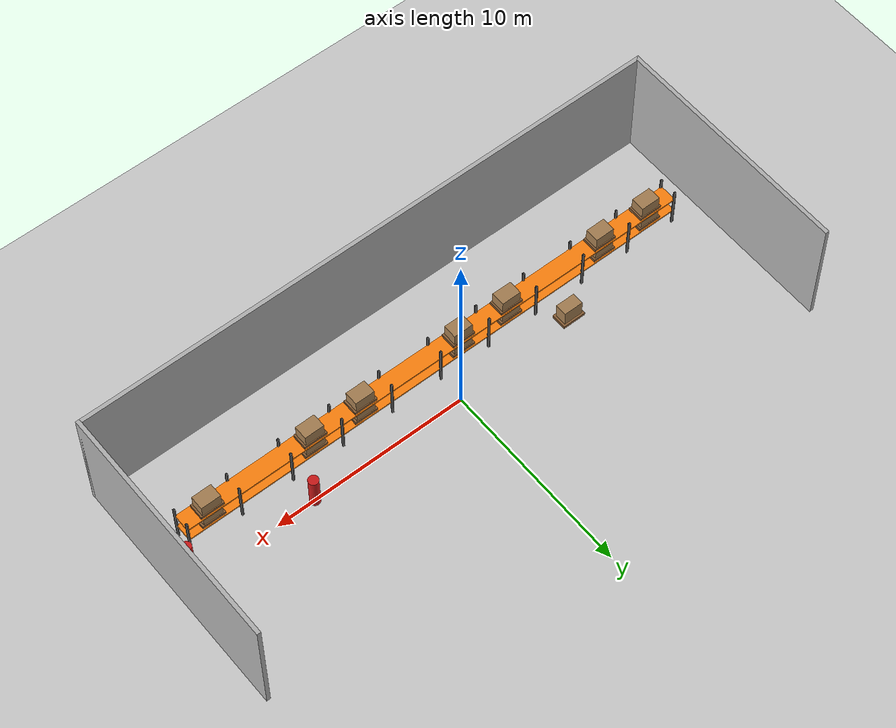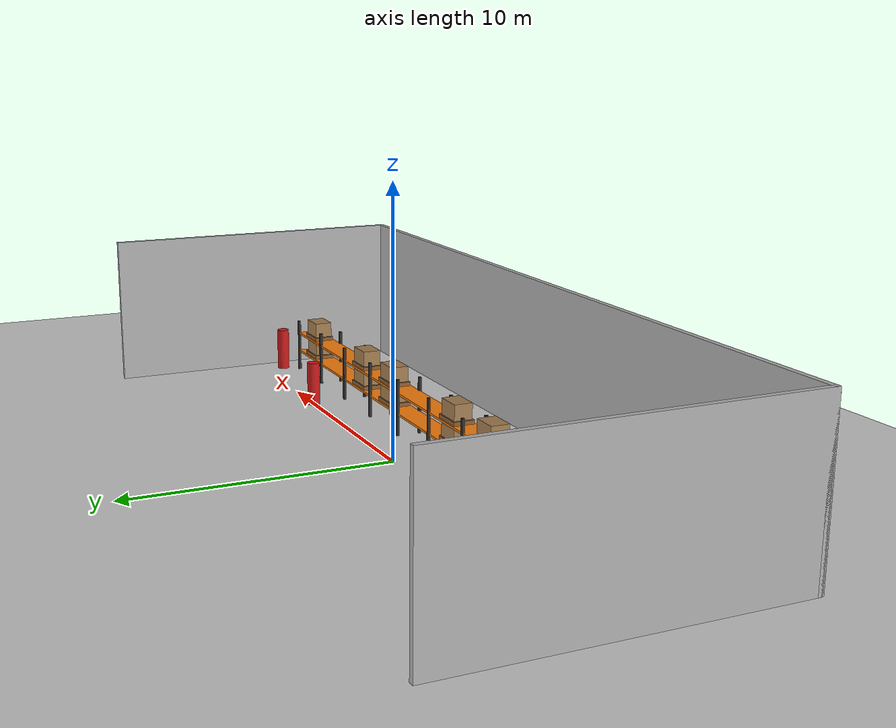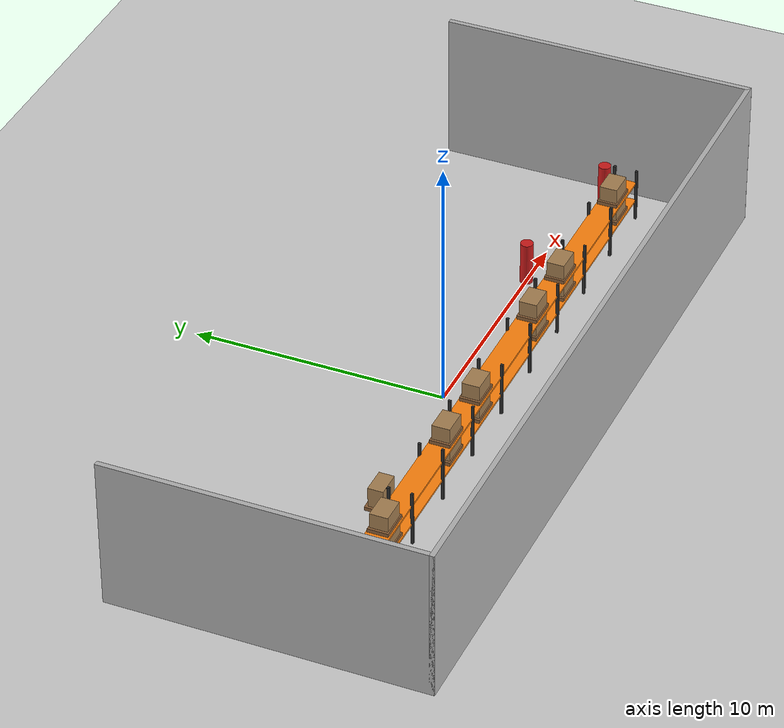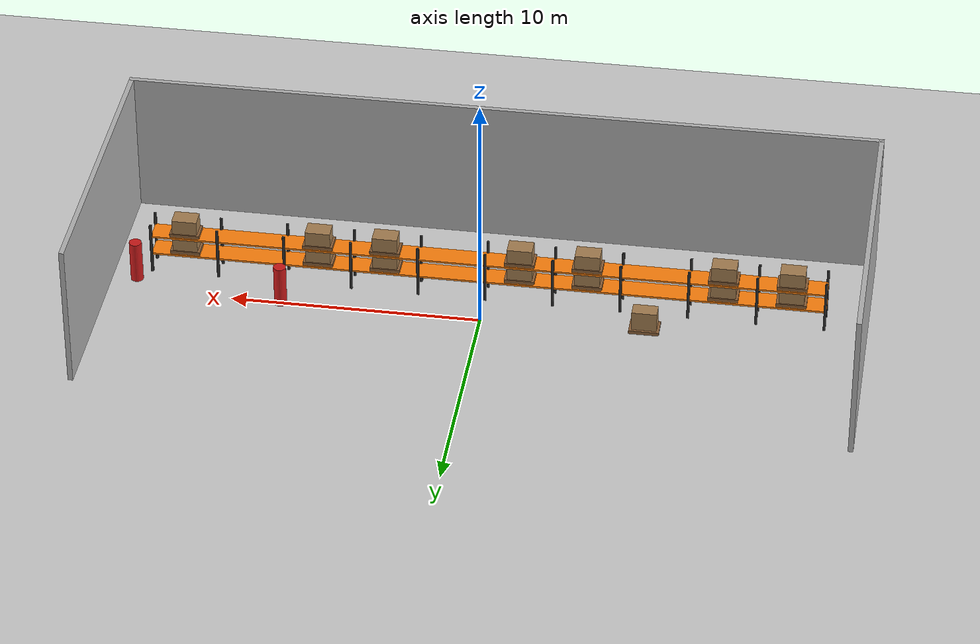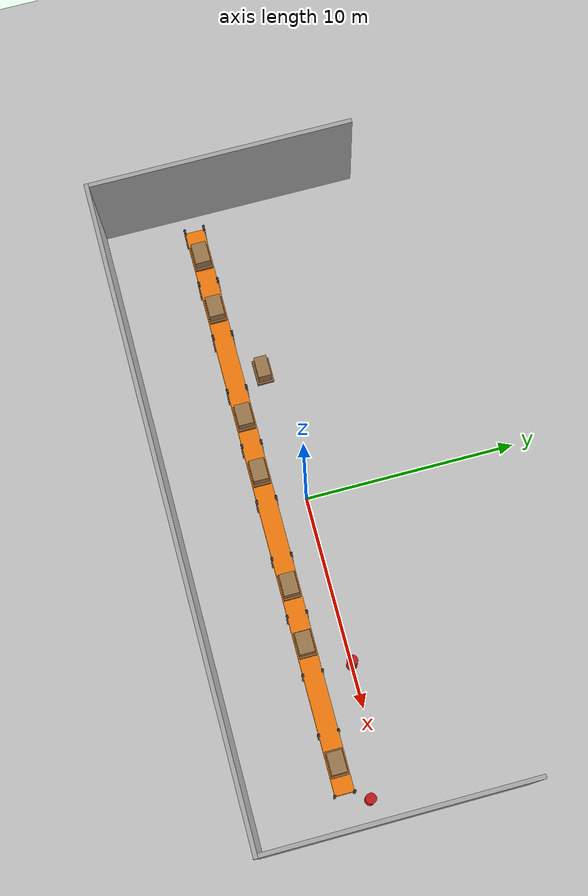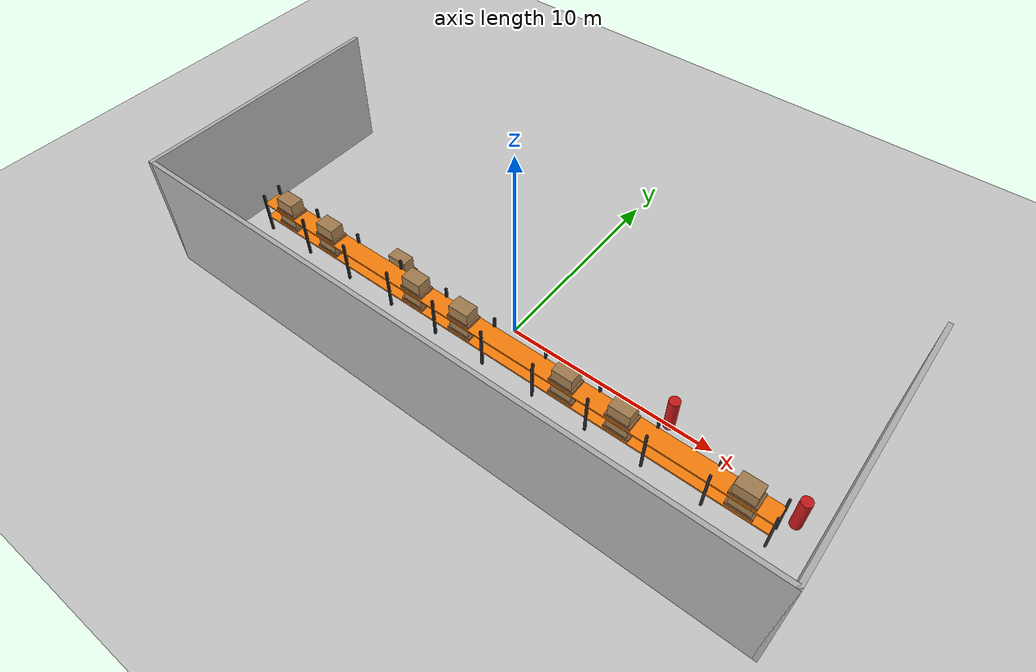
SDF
<sdf version="1.9">
 <world name="warehouse">
  <model name="ground_plane">
   <static>true</static>
   <link name="link">
    <collision name="collision">
     <geometry><plane><normal>0 0 1</normal><size>100 100</size></plane></geometry>
     <surface><friction><ode><mu>100</mu><mu2>50</mu2></ode></friction></surface>
    </collision>
    <visual name="visual">
     <geometry><plane><normal>0 0 1</normal><size>100 100</size></plane></geometry>
     <material><ambient>0.8 0.8 0.8 1</ambient><diffuse>0.8 0.8 0.8 1</diffuse></material>
    </visual>
   </link>
  </model>
  <model name="wall_west">
   <static>true</static>
   <pose>-15.1000 0.0000 3.0000 0 0 0</pose>
   <link name="link">
    <collision name="collision"><geometry><box><size>0.2000 12.4000 6.0000</size></box></geometry></collision>
    <visual name="visual">
     <geometry><box><size>0.2000 12.4000 6.0000</size></box></geometry>
     <material>
      <ambient>0.70 0.70 0.70 1</ambient>
      <diffuse>0.70 0.70 0.70 1</diffuse>
      <specular>0.1 0.1 0.1 1</specular>
     </material>
    </visual>
   </link>
  </model>
  <model name="wall_east">
   <static>true</static>
   <pose>15.1000 0.0000 3.0000 0 0 0</pose>
   <link name="link">
    <collision name="collision"><geometry><box><size>0.2000 12.4000 6.0000</size></box></geometry></collision>
    <visual name="visual">
     <geometry><box><size>0.2000 12.4000 6.0000</size></box></geometry>
     <material>
      <ambient>0.70 0.70 0.70 1</ambient>
      <diffuse>0.70 0.70 0.70 1</diffuse>
      <specular>0.1 0.1 0.1 1</specular>
     </material>
    </visual>
   </link>
  </model>
  <model name="wall_south">
   <static>true</static>
   <pose>0.0000 -6.1000 3.0000 0 0 0</pose>
   <link name="link">
    <collision name="collision"><geometry><box><size>30.4000 0.2000 6.0000</size></box></geometry></collision>
    <visual name="visual">
     <geometry><box><size>30.4000 0.2000 6.0000</size></box></geometry>
     <material>
      <ambient>0.70 0.70 0.70 1</ambient>
      <diffuse>0.70 0.70 0.70 1</diffuse>
      <specular>0.1 0.1 0.1 1</specular>
     </material>
    </visual>
   </link>
  </model>
  <model name="upright_s_0_0">
   <static>true</static>
   <pose>-13.5000 -1.4000 1.1000 0 0 0</pose>
   <link name="link">
    <collision name="collision"><geometry><box><size>0.1000 0.1000 2.2000</size></box></geometry></collision>
    <visual name="visual">
     <geometry><box><size>0.1000 0.1000 2.2000</size></box></geometry>
     <material>
      <ambient>0.18 0.18 0.18 1</ambient>
      <diffuse>0.18 0.18 0.18 1</diffuse>
      <specular>0.1 0.1 0.1 1</specular>
     </material>
    </visual>
   </link>
  </model>
  <model name="upright_s_0_1">
   <static>true</static>
   <pose>-13.5000 -2.3000 1.1000 0 0 0</pose>
   <link name="link">
    <collision name="collision"><geometry><box><size>0.1000 0.1000 2.2000</size></box></geometry></collision>
    <visual name="visual">
     <geometry><box><size>0.1000 0.1000 2.2000</size></box></geometry>
     <material>
      <ambient>0.18 0.18 0.18 1</ambient>
      <diffuse>0.18 0.18 0.18 1</diffuse>
      <specular>0.1 0.1 0.1 1</specular>
     </material>
    </visual>
   </link>
  </model>
  <model name="upright_s_1_0">
   <static>true</static>
   <pose>-10.8000 -1.4000 1.1000 0 0 0</pose>
   <link name="link">
    <collision name="collision"><geometry><box><size>0.1000 0.1000 2.2000</size></box></geometry></collision>
    <visual name="visual">
     <geometry><box><size>0.1000 0.1000 2.2000</size></box></geometry>
     <material>
      <ambient>0.18 0.18 0.18 1</ambient>
      <diffuse>0.18 0.18 0.18 1</diffuse>
      <specular>0.1 0.1 0.1 1</specular>
     </material>
    </visual>
   </link>
  </model>
  <model name="upright_s_1_1">
   <static>true</static>
   <pose>-10.8000 -2.3000 1.1000 0 0 0</pose>
   <link name="link">
    <collision name="collision"><geometry><box><size>0.1000 0.1000 2.2000</size></box></geometry></collision>
    <visual name="visual">
     <geometry><box><size>0.1000 0.1000 2.2000</size></box></geometry>
     <material>
      <ambient>0.18 0.18 0.18 1</ambient>
      <diffuse>0.18 0.18 0.18 1</diffuse>
      <specular>0.1 0.1 0.1 1</specular>
     </material>
    </visual>
   </link>
  </model>
  <model name="upright_s_2_0">
   <static>true</static>
   <pose>-8.1000 -1.4000 1.1000 0 0 0</pose>
   <link name="link">
    <collision name="collision"><geometry><box><size>0.1000 0.1000 2.2000</size></box></geometry></collision>
    <visual name="visual">
     <geometry><box><size>0.1000 0.1000 2.2000</size></box></geometry>
     <material>
      <ambient>0.18 0.18 0.18 1</ambient>
      <diffuse>0.18 0.18 0.18 1</diffuse>
      <specular>0.1 0.1 0.1 1</specular>
     </material>
    </visual>
   </link>
  </model>
  <model name="upright_s_2_1">
   <static>true</static>
   <pose>-8.1000 -2.3000 1.1000 0 0 0</pose>
   <link name="link">
    <collision name="collision"><geometry><box><size>0.1000 0.1000 2.2000</size></box></geometry></collision>
    <visual name="visual">
     <geometry><box><size>0.1000 0.1000 2.2000</size></box></geometry>
     <material>
      <ambient>0.18 0.18 0.18 1</ambient>
      <diffuse>0.18 0.18 0.18 1</diffuse>
      <specular>0.1 0.1 0.1 1</specular>
     </material>
    </visual>
   </link>
  </model>
  <model name="upright_s_3_0">
   <static>true</static>
   <pose>-5.4000 -1.4000 1.1000 0 0 0</pose>
   <link name="link">
    <collision name="collision"><geometry><box><size>0.1000 0.1000 2.2000</size></box></geometry></collision>
    <visual name="visual">
     <geometry><box><size>0.1000 0.1000 2.2000</size></box></geometry>
     <material>
      <ambient>0.18 0.18 0.18 1</ambient>
      <diffuse>0.18 0.18 0.18 1</diffuse>
      <specular>0.1 0.1 0.1 1</specular>
     </material>
    </visual>
   </link>
  </model>
  <model name="upright_s_3_1">
   <static>true</static>
   <pose>-5.4000 -2.3000 1.1000 0 0 0</pose>
   <link name="link">
    <collision name="collision"><geometry><box><size>0.1000 0.1000 2.2000</size></box></geometry></collision>
    <visual name="visual">
     <geometry><box><size>0.1000 0.1000 2.2000</size></box></geometry>
     <material>
      <ambient>0.18 0.18 0.18 1</ambient>
      <diffuse>0.18 0.18 0.18 1</diffuse>
      <specular>0.1 0.1 0.1 1</specular>
     </material>
    </visual>
   </link>
  </model>
  <model name="upright_s_4_0">
   <static>true</static>
   <pose>-2.7000 -1.4000 1.1000 0 0 0</pose>
   <link name="link">
    <collision name="collision"><geometry><box><size>0.1000 0.1000 2.2000</size></box></geometry></collision>
    <visual name="visual">
     <geometry><box><size>0.1000 0.1000 2.2000</size></box></geometry>
     <material>
      <ambient>0.18 0.18 0.18 1</ambient>
      <diffuse>0.18 0.18 0.18 1</diffuse>
      <specular>0.1 0.1 0.1 1</specular>
     </material>
    </visual>
   </link>
  </model>
  <model name="upright_s_4_1">
   <static>true</static>
   <pose>-2.7000 -2.3000 1.1000 0 0 0</pose>
   <link name="link">
    <collision name="collision"><geometry><box><size>0.1000 0.1000 2.2000</size></box></geometry></collision>
    <visual name="visual">
     <geometry><box><size>0.1000 0.1000 2.2000</size></box></geometry>
     <material>
      <ambient>0.18 0.18 0.18 1</ambient>
      <diffuse>0.18 0.18 0.18 1</diffuse>
      <specular>0.1 0.1 0.1 1</specular>
     </material>
    </visual>
   </link>
  </model>
  <model name="upright_s_5_0">
   <static>true</static>
   <pose>0.0000 -1.4000 1.1000 0 0 0</pose>
   <link name="link">
    <collision name="collision"><geometry><box><size>0.1000 0.1000 2.2000</size></box></geometry></collision>
    <visual name="visual">
     <geometry><box><size>0.1000 0.1000 2.2000</size></box></geometry>
     <material>
      <ambient>0.18 0.18 0.18 1</ambient>
      <diffuse>0.18 0.18 0.18 1</diffuse>
      <specular>0.1 0.1 0.1 1</specular>
     </material>
    </visual>
   </link>
  </model>
  <model name="upright_s_5_1">
   <static>true</static>
   <pose>0.0000 -2.3000 1.1000 0 0 0</pose>
   <link name="link">
    <collision name="collision"><geometry><box><size>0.1000 0.1000 2.2000</size></box></geometry></collision>
    <visual name="visual">
     <geometry><box><size>0.1000 0.1000 2.2000</size></box></geometry>
     <material>
      <ambient>0.18 0.18 0.18 1</ambient>
      <diffuse>0.18 0.18 0.18 1</diffuse>
      <specular>0.1 0.1 0.1 1</specular>
     </material>
    </visual>
   </link>
  </model>
  <model name="upright_s_6_0">
   <static>true</static>
   <pose>2.7000 -1.4000 1.1000 0 0 0</pose>
   <link name="link">
    <collision name="collision"><geometry><box><size>0.1000 0.1000 2.2000</size></box></geometry></collision>
    <visual name="visual">
     <geometry><box><size>0.1000 0.1000 2.2000</size></box></geometry>
     <material>
      <ambient>0.18 0.18 0.18 1</ambient>
      <diffuse>0.18 0.18 0.18 1</diffuse>
      <specular>0.1 0.1 0.1 1</specular>
     </material>
    </visual>
   </link>
  </model>
  <model name="upright_s_6_1">
   <static>true</static>
   <pose>2.7000 -2.3000 1.1000 0 0 0</pose>
   <link name="link">
    <collision name="collision"><geometry><box><size>0.1000 0.1000 2.2000</size></box></geometry></collision>
    <visual name="visual">
     <geometry><box><size>0.1000 0.1000 2.2000</size></box></geometry>
     <material>
      <ambient>0.18 0.18 0.18 1</ambient>
      <diffuse>0.18 0.18 0.18 1</diffuse>
      <specular>0.1 0.1 0.1 1</specular>
     </material>
    </visual>
   </link>
  </model>
  <model name="upright_s_7_0">
   <static>true</static>
   <pose>5.4000 -1.4000 1.1000 0 0 0</pose>
   <link name="link">
    <collision name="collision"><geometry><box><size>0.1000 0.1000 2.2000</size></box></geometry></collision>
    <visual name="visual">
     <geometry><box><size>0.1000 0.1000 2.2000</size></box></geometry>
     <material>
      <ambient>0.18 0.18 0.18 1</ambient>
      <diffuse>0.18 0.18 0.18 1</diffuse>
      <specular>0.1 0.1 0.1 1</specular>
     </material>
    </visual>
   </link>
  </model>
  <model name="upright_s_7_1">
   <static>true</static>
   <pose>5.4000 -2.3000 1.1000 0 0 0</pose>
   <link name="link">
    <collision name="collision"><geometry><box><size>0.1000 0.1000 2.2000</size></box></geometry></collision>
    <visual name="visual">
     <geometry><box><size>0.1000 0.1000 2.2000</size></box></geometry>
     <material>
      <ambient>0.18 0.18 0.18 1</ambient>
      <diffuse>0.18 0.18 0.18 1</diffuse>
      <specular>0.1 0.1 0.1 1</specular>
     </material>
    </visual>
   </link>
  </model>
  <model name="upright_s_8_0">
   <static>true</static>
   <pose>8.1000 -1.4000 1.1000 0 0 0</pose>
   <link name="link">
    <collision name="collision"><geometry><box><size>0.1000 0.1000 2.2000</size></box></geometry></collision>
    <visual name="visual">
     <geometry><box><size>0.1000 0.1000 2.2000</size></box></geometry>
     <material>
      <ambient>0.18 0.18 0.18 1</ambient>
      <diffuse>0.18 0.18 0.18 1</diffuse>
      <specular>0.1 0.1 0.1 1</specular>
     </material>
    </visual>
   </link>
  </model>
  <model name="upright_s_8_1">
   <static>true</static>
   <pose>8.1000 -2.3000 1.1000 0 0 0</pose>
   <link name="link">
    <collision name="collision"><geometry><box><size>0.1000 0.1000 2.2000</size></box></geometry></collision>
    <visual name="visual">
     <geometry><box><size>0.1000 0.1000 2.2000</size></box></geometry>
     <material>
      <ambient>0.18 0.18 0.18 1</ambient>
      <diffuse>0.18 0.18 0.18 1</diffuse>
      <specular>0.1 0.1 0.1 1</specular>
     </material>
    </visual>
   </link>
  </model>
  <model name="upright_s_9_0">
   <static>true</static>
   <pose>10.8000 -1.4000 1.1000 0 0 0</pose>
   <link name="link">
    <collision name="collision"><geometry><box><size>0.1000 0.1000 2.2000</size></box></geometry></collision>
    <visual name="visual">
     <geometry><box><size>0.1000 0.1000 2.2000</size></box></geometry>
     <material>
      <ambient>0.18 0.18 0.18 1</ambient>
      <diffuse>0.18 0.18 0.18 1</diffuse>
      <specular>0.1 0.1 0.1 1</specular>
     </material>
    </visual>
   </link>
  </model>
  <model name="upright_s_9_1">
   <static>true</static>
   <pose>10.8000 -2.3000 1.1000 0 0 0</pose>
   <link name="link">
    <collision name="collision"><geometry><box><size>0.1000 0.1000 2.2000</size></box></geometry></collision>
    <visual name="visual">
     <geometry><box><size>0.1000 0.1000 2.2000</size></box></geometry>
     <material>
      <ambient>0.18 0.18 0.18 1</ambient>
      <diffuse>0.18 0.18 0.18 1</diffuse>
      <specular>0.1 0.1 0.1 1</specular>
     </material>
    </visual>
   </link>
  </model>
  <model name="upright_s_10_0">
   <static>true</static>
   <pose>13.5000 -1.4000 1.1000 0 0 0</pose>
   <link name="link">
    <collision name="collision"><geometry><box><size>0.1000 0.1000 2.2000</size></box></geometry></collision>
    <visual name="visual">
     <geometry><box><size>0.1000 0.1000 2.2000</size></box></geometry>
     <material>
      <ambient>0.18 0.18 0.18 1</ambient>
      <diffuse>0.18 0.18 0.18 1</diffuse>
      <specular>0.1 0.1 0.1 1</specular>
     </material>
    </visual>
   </link>
  </model>
  <model name="upright_s_10_1">
   <static>true</static>
   <pose>13.5000 -2.3000 1.1000 0 0 0</pose>
   <link name="link">
    <collision name="collision"><geometry><box><size>0.1000 0.1000 2.2000</size></box></geometry></collision>
    <visual name="visual">
     <geometry><box><size>0.1000 0.1000 2.2000</size></box></geometry>
     <material>
      <ambient>0.18 0.18 0.18 1</ambient>
      <diffuse>0.18 0.18 0.18 1</diffuse>
      <specular>0.1 0.1 0.1 1</specular>
     </material>
    </visual>
   </link>
  </model>
  <model name="beam_s_0">
   <static>true</static>
   <pose>-0.0250 -1.8500 0.8400 0 0 0</pose>
   <link name="link">
    <collision name="collision"><geometry><box><size>27.0500 0.9000 0.0800</size></box></geometry></collision>
    <visual name="visual">
     <geometry><box><size>27.0500 0.9000 0.0800</size></box></geometry>
     <material>
      <ambient>1.00 0.51 0.05 1</ambient>
      <diffuse>1.00 0.51 0.05 1</diffuse>
      <specular>0.1 0.1 0.1 1</specular>
     </material>
    </visual>
   </link>
  </model>
  <model name="beam_s_1">
   <static>true</static>
   <pose>-0.0250 -1.8500 1.6400 0 0 0</pose>
   <link name="link">
    <collision name="collision"><geometry><box><size>27.0500 0.9000 0.0800</size></box></geometry></collision>
    <visual name="visual">
     <geometry><box><size>27.0500 0.9000 0.0800</size></box></geometry>
     <material>
      <ambient>1.00 0.51 0.05 1</ambient>
      <diffuse>1.00 0.51 0.05 1</diffuse>
      <specular>0.1 0.1 0.1 1</specular>
     </material>
    </visual>
   </link>
  </model>
  <model name="pallet_s_0_0">
   <static>true</static>
   <pose>-12.1500 -1.8500 0.9550 0 0 0</pose>
   <link name="link">
    <collision name="collision"><geometry><box><size>1.2000 0.8000 0.1500</size></box></geometry></collision>
    <visual name="visual">
     <geometry><box><size>1.2000 0.8000 0.1500</size></box></geometry>
     <material>
      <ambient>0.55 0.38 0.22 1</ambient>
      <diffuse>0.55 0.38 0.22 1</diffuse>
      <specular>0.1 0.1 0.1 1</specular>
     </material>
    </visual>
   </link>
  </model>
  <model name="carton_s_0_0">
   <static>true</static>
   <pose>-12.1500 -1.8500 1.3300 0 0 0</pose>
   <link name="link">
    <collision name="collision"><geometry><box><size>1.0000 0.7000 0.6000</size></box></geometry></collision>
    <visual name="visual">
     <geometry><box><size>1.0000 0.7000 0.6000</size></box></geometry>
     <material>
      <ambient>0.65 0.50 0.32 1</ambient>
      <diffuse>0.65 0.50 0.32 1</diffuse>
      <specular>0.1 0.1 0.1 1</specular>
     </material>
    </visual>
   </link>
  </model>
  <model name="pallet_s_0_1">
   <static>true</static>
   <pose>-12.1500 -1.8500 1.7550 0 0 0</pose>
   <link name="link">
    <collision name="collision"><geometry><box><size>1.2000 0.8000 0.1500</size></box></geometry></collision>
    <visual name="visual">
     <geometry><box><size>1.2000 0.8000 0.1500</size></box></geometry>
     <material>
      <ambient>0.55 0.38 0.22 1</ambient>
      <diffuse>0.55 0.38 0.22 1</diffuse>
      <specular>0.1 0.1 0.1 1</specular>
     </material>
    </visual>
   </link>
  </model>
  <model name="carton_s_0_1">
   <static>true</static>
   <pose>-12.1500 -1.8500 2.1300 0 0 0</pose>
   <link name="link">
    <collision name="collision"><geometry><box><size>1.0000 0.7000 0.6000</size></box></geometry></collision>
    <visual name="visual">
     <geometry><box><size>1.0000 0.7000 0.6000</size></box></geometry>
     <material>
      <ambient>0.65 0.50 0.32 1</ambient>
      <diffuse>0.65 0.50 0.32 1</diffuse>
      <specular>0.1 0.1 0.1 1</specular>
     </material>
    </visual>
   </link>
  </model>
  <model name="pallet_s_1_0">
   <static>true</static>
   <pose>-9.4500 -1.8500 0.9550 0 0 0</pose>
   <link name="link">
    <collision name="collision"><geometry><box><size>1.2000 0.8000 0.1500</size></box></geometry></collision>
    <visual name="visual">
     <geometry><box><size>1.2000 0.8000 0.1500</size></box></geometry>
     <material>
      <ambient>0.55 0.38 0.22 1</ambient>
      <diffuse>0.55 0.38 0.22 1</diffuse>
      <specular>0.1 0.1 0.1 1</specular>
     </material>
    </visual>
   </link>
  </model>
  <model name="carton_s_1_0">
   <static>true</static>
   <pose>-9.4500 -1.8500 1.3300 0 0 0</pose>
   <link name="link">
    <collision name="collision"><geometry><box><size>1.0000 0.7000 0.6000</size></box></geometry></collision>
    <visual name="visual">
     <geometry><box><size>1.0000 0.7000 0.6000</size></box></geometry>
     <material>
      <ambient>0.65 0.50 0.32 1</ambient>
      <diffuse>0.65 0.50 0.32 1</diffuse>
      <specular>0.1 0.1 0.1 1</specular>
     </material>
    </visual>
   </link>
  </model>
  <model name="pallet_s_1_1">
   <static>true</static>
   <pose>-9.4500 -1.8500 1.7550 0 0 0</pose>
   <link name="link">
    <collision name="collision"><geometry><box><size>1.2000 0.8000 0.1500</size></box></geometry></collision>
    <visual name="visual">
     <geometry><box><size>1.2000 0.8000 0.1500</size></box></geometry>
     <material>
      <ambient>0.55 0.38 0.22 1</ambient>
      <diffuse>0.55 0.38 0.22 1</diffuse>
      <specular>0.1 0.1 0.1 1</specular>
     </material>
    </visual>
   </link>
  </model>
  <model name="carton_s_1_1">
   <static>true</static>
   <pose>-9.4500 -1.8500 2.1300 0 0 0</pose>
   <link name="link">
    <collision name="collision"><geometry><box><size>1.0000 0.7000 0.6000</size></box></geometry></collision>
    <visual name="visual">
     <geometry><box><size>1.0000 0.7000 0.6000</size></box></geometry>
     <material>
      <ambient>0.65 0.50 0.32 1</ambient>
      <diffuse>0.65 0.50 0.32 1</diffuse>
      <specular>0.1 0.1 0.1 1</specular>
     </material>
    </visual>
   </link>
  </model>
  <model name="pallet_s_3_0">
   <static>true</static>
   <pose>-4.0500 -1.8500 0.9550 0 0 0</pose>
   <link name="link">
    <collision name="collision"><geometry><box><size>1.2000 0.8000 0.1500</size></box></geometry></collision>
    <visual name="visual">
     <geometry><box><size>1.2000 0.8000 0.1500</size></box></geometry>
     <material>
      <ambient>0.55 0.38 0.22 1</ambient>
      <diffuse>0.55 0.38 0.22 1</diffuse>
      <specular>0.1 0.1 0.1 1</specular>
     </material>
    </visual>
   </link>
  </model>
  <model name="carton_s_3_0">
   <static>true</static>
   <pose>-4.0500 -1.8500 1.3300 0 0 0</pose>
   <link name="link">
    <collision name="collision"><geometry><box><size>1.0000 0.7000 0.6000</size></box></geometry></collision>
    <visual name="visual">
     <geometry><box><size>1.0000 0.7000 0.6000</size></box></geometry>
     <material>
      <ambient>0.65 0.50 0.32 1</ambient>
      <diffuse>0.65 0.50 0.32 1</diffuse>
      <specular>0.1 0.1 0.1 1</specular>
     </material>
    </visual>
   </link>
  </model>
  <model name="pallet_s_3_1">
   <static>true</static>
   <pose>-4.0500 -1.8500 1.7550 0 0 0</pose>
   <link name="link">
    <collision name="collision"><geometry><box><size>1.2000 0.8000 0.1500</size></box></geometry></collision>
    <visual name="visual">
     <geometry><box><size>1.2000 0.8000 0.1500</size></box></geometry>
     <material>
      <ambient>0.55 0.38 0.22 1</ambient>
      <diffuse>0.55 0.38 0.22 1</diffuse>
      <specular>0.1 0.1 0.1 1</specular>
     </material>
    </visual>
   </link>
  </model>
  <model name="carton_s_3_1">
   <static>true</static>
   <pose>-4.0500 -1.8500 2.1300 0 0 0</pose>
   <link name="link">
    <collision name="collision"><geometry><box><size>1.0000 0.7000 0.6000</size></box></geometry></collision>
    <visual name="visual">
     <geometry><box><size>1.0000 0.7000 0.6000</size></box></geometry>
     <material>
      <ambient>0.65 0.50 0.32 1</ambient>
      <diffuse>0.65 0.50 0.32 1</diffuse>
      <specular>0.1 0.1 0.1 1</specular>
     </material>
    </visual>
   </link>
  </model>
  <model name="pallet_s_4_0">
   <static>true</static>
   <pose>-1.3500 -1.8500 0.9550 0 0 0</pose>
   <link name="link">
    <collision name="collision"><geometry><box><size>1.2000 0.8000 0.1500</size></box></geometry></collision>
    <visual name="visual">
     <geometry><box><size>1.2000 0.8000 0.1500</size></box></geometry>
     <material>
      <ambient>0.55 0.38 0.22 1</ambient>
      <diffuse>0.55 0.38 0.22 1</diffuse>
      <specular>0.1 0.1 0.1 1</specular>
     </material>
    </visual>
   </link>
  </model>
  <model name="carton_s_4_0">
   <static>true</static>
   <pose>-1.3500 -1.8500 1.3300 0 0 0</pose>
   <link name="link">
    <collision name="collision"><geometry><box><size>1.0000 0.7000 0.6000</size></box></geometry></collision>
    <visual name="visual">
     <geometry><box><size>1.0000 0.7000 0.6000</size></box></geometry>
     <material>
      <ambient>0.65 0.50 0.32 1</ambient>
      <diffuse>0.65 0.50 0.32 1</diffuse>
      <specular>0.1 0.1 0.1 1</specular>
     </material>
    </visual>
   </link>
  </model>
  <model name="pallet_s_4_1">
   <static>true</static>
   <pose>-1.3500 -1.8500 1.7550 0 0 0</pose>
   <link name="link">
    <collision name="collision"><geometry><box><size>1.2000 0.8000 0.1500</size></box></geometry></collision>
    <visual name="visual">
     <geometry><box><size>1.2000 0.8000 0.1500</size></box></geometry>
     <material>
      <ambient>0.55 0.38 0.22 1</ambient>
      <diffuse>0.55 0.38 0.22 1</diffuse>
      <specular>0.1 0.1 0.1 1</specular>
     </material>
    </visual>
   </link>
  </model>
  <model name="carton_s_4_1">
   <static>true</static>
   <pose>-1.3500 -1.8500 2.1300 0 0 0</pose>
   <link name="link">
    <collision name="collision"><geometry><box><size>1.0000 0.7000 0.6000</size></box></geometry></collision>
    <visual name="visual">
     <geometry><box><size>1.0000 0.7000 0.6000</size></box></geometry>
     <material>
      <ambient>0.65 0.50 0.32 1</ambient>
      <diffuse>0.65 0.50 0.32 1</diffuse>
      <specular>0.1 0.1 0.1 1</specular>
     </material>
    </visual>
   </link>
  </model>
  <model name="pallet_s_6_0">
   <static>true</static>
   <pose>4.0500 -1.8500 0.9550 0 0 0</pose>
   <link name="link">
    <collision name="collision"><geometry><box><size>1.2000 0.8000 0.1500</size></box></geometry></collision>
    <visual name="visual">
     <geometry><box><size>1.2000 0.8000 0.1500</size></box></geometry>
     <material>
      <ambient>0.55 0.38 0.22 1</ambient>
      <diffuse>0.55 0.38 0.22 1</diffuse>
      <specular>0.1 0.1 0.1 1</specular>
     </material>
    </visual>
   </link>
  </model>
  <model name="carton_s_6_0">
   <static>true</static>
   <pose>4.0500 -1.8500 1.3300 0 0 0</pose>
   <link name="link">
    <collision name="collision"><geometry><box><size>1.0000 0.7000 0.6000</size></box></geometry></collision>
    <visual name="visual">
     <geometry><box><size>1.0000 0.7000 0.6000</size></box></geometry>
     <material>
      <ambient>0.65 0.50 0.32 1</ambient>
      <diffuse>0.65 0.50 0.32 1</diffuse>
      <specular>0.1 0.1 0.1 1</specular>
     </material>
    </visual>
   </link>
  </model>
  <model name="pallet_s_6_1">
   <static>true</static>
   <pose>4.0500 -1.8500 1.7550 0 0 0</pose>
   <link name="link">
    <collision name="collision"><geometry><box><size>1.2000 0.8000 0.1500</size></box></geometry></collision>
    <visual name="visual">
     <geometry><box><size>1.2000 0.8000 0.1500</size></box></geometry>
     <material>
      <ambient>0.55 0.38 0.22 1</ambient>
      <diffuse>0.55 0.38 0.22 1</diffuse>
      <specular>0.1 0.1 0.1 1</specular>
     </material>
    </visual>
   </link>
  </model>
  <model name="carton_s_6_1">
   <static>true</static>
   <pose>4.0500 -1.8500 2.1300 0 0 0</pose>
   <link name="link">
    <collision name="collision"><geometry><box><size>1.0000 0.7000 0.6000</size></box></geometry></collision>
    <visual name="visual">
     <geometry><box><size>1.0000 0.7000 0.6000</size></box></geometry>
     <material>
      <ambient>0.65 0.50 0.32 1</ambient>
      <diffuse>0.65 0.50 0.32 1</diffuse>
      <specular>0.1 0.1 0.1 1</specular>
     </material>
    </visual>
   </link>
  </model>
  <model name="pallet_s_7_0">
   <static>true</static>
   <pose>6.7500 -1.8500 0.9550 0 0 0</pose>
   <link name="link">
    <collision name="collision"><geometry><box><size>1.2000 0.8000 0.1500</size></box></geometry></collision>
    <visual name="visual">
     <geometry><box><size>1.2000 0.8000 0.1500</size></box></geometry>
     <material>
      <ambient>0.55 0.38 0.22 1</ambient>
      <diffuse>0.55 0.38 0.22 1</diffuse>
      <specular>0.1 0.1 0.1 1</specular>
     </material>
    </visual>
   </link>
  </model>
  <model name="carton_s_7_0">
   <static>true</static>
   <pose>6.7500 -1.8500 1.3300 0 0 0</pose>
   <link name="link">
    <collision name="collision"><geometry><box><size>1.0000 0.7000 0.6000</size></box></geometry></collision>
    <visual name="visual">
     <geometry><box><size>1.0000 0.7000 0.6000</size></box></geometry>
     <material>
      <ambient>0.65 0.50 0.32 1</ambient>
      <diffuse>0.65 0.50 0.32 1</diffuse>
      <specular>0.1 0.1 0.1 1</specular>
     </material>
    </visual>
   </link>
  </model>
  <model name="pallet_s_7_1">
   <static>true</static>
   <pose>6.7500 -1.8500 1.7550 0 0 0</pose>
   <link name="link">
    <collision name="collision"><geometry><box><size>1.2000 0.8000 0.1500</size></box></geometry></collision>
    <visual name="visual">
     <geometry><box><size>1.2000 0.8000 0.1500</size></box></geometry>
     <material>
      <ambient>0.55 0.38 0.22 1</ambient>
      <diffuse>0.55 0.38 0.22 1</diffuse>
      <specular>0.1 0.1 0.1 1</specular>
     </material>
    </visual>
   </link>
  </model>
  <model name="carton_s_7_1">
   <static>true</static>
   <pose>6.7500 -1.8500 2.1300 0 0 0</pose>
   <link name="link">
    <collision name="collision"><geometry><box><size>1.0000 0.7000 0.6000</size></box></geometry></collision>
    <visual name="visual">
     <geometry><box><size>1.0000 0.7000 0.6000</size></box></geometry>
     <material>
      <ambient>0.65 0.50 0.32 1</ambient>
      <diffuse>0.65 0.50 0.32 1</diffuse>
      <specular>0.1 0.1 0.1 1</specular>
     </material>
    </visual>
   </link>
  </model>
  <model name="pallet_s_9_0">
   <static>true</static>
   <pose>12.1500 -1.8500 0.9550 0 0 0</pose>
   <link name="link">
    <collision name="collision"><geometry><box><size>1.2000 0.8000 0.1500</size></box></geometry></collision>
    <visual name="visual">
     <geometry><box><size>1.2000 0.8000 0.1500</size></box></geometry>
     <material>
      <ambient>0.55 0.38 0.22 1</ambient>
      <diffuse>0.55 0.38 0.22 1</diffuse>
      <specular>0.1 0.1 0.1 1</specular>
     </material>
    </visual>
   </link>
  </model>
  <model name="carton_s_9_0">
   <static>true</static>
   <pose>12.1500 -1.8500 1.3300 0 0 0</pose>
   <link name="link">
    <collision name="collision"><geometry><box><size>1.0000 0.7000 0.6000</size></box></geometry></collision>
    <visual name="visual">
     <geometry><box><size>1.0000 0.7000 0.6000</size></box></geometry>
     <material>
      <ambient>0.65 0.50 0.32 1</ambient>
      <diffuse>0.65 0.50 0.32 1</diffuse>
      <specular>0.1 0.1 0.1 1</specular>
     </material>
    </visual>
   </link>
  </model>
  <model name="pallet_s_9_1">
   <static>true</static>
   <pose>12.1500 -1.8500 1.7550 0 0 0</pose>
   <link name="link">
    <collision name="collision"><geometry><box><size>1.2000 0.8000 0.1500</size></box></geometry></collision>
    <visual name="visual">
     <geometry><box><size>1.2000 0.8000 0.1500</size></box></geometry>
     <material>
      <ambient>0.55 0.38 0.22 1</ambient>
      <diffuse>0.55 0.38 0.22 1</diffuse>
      <specular>0.1 0.1 0.1 1</specular>
     </material>
    </visual>
   </link>
  </model>
  <model name="carton_s_9_1">
   <static>true</static>
   <pose>12.1500 -1.8500 2.1300 0 0 0</pose>
   <link name="link">
    <collision name="collision"><geometry><box><size>1.0000 0.7000 0.6000</size></box></geometry></collision>
    <visual name="visual">
     <geometry><box><size>1.0000 0.7000 0.6000</size></box></geometry>
     <material>
      <ambient>0.65 0.50 0.32 1</ambient>
      <diffuse>0.65 0.50 0.32 1</diffuse>
      <specular>0.1 0.1 0.1 1</specular>
     </material>
    </visual>
   </link>
  </model>
  <model name="aisle_pallet_1">
   <static>true</static>
   <pose>-6.5000 -0.4000 0.0750 0 0 0</pose>
   <link name="link">
    <collision name="collision"><geometry><box><size>1.2000 0.8000 0.1500</size></box></geometry></collision>
    <visual name="visual">
     <geometry><box><size>1.2000 0.8000 0.1500</size></box></geometry>
     <material>
      <ambient>0.55 0.38 0.22 1</ambient>
      <diffuse>0.55 0.38 0.22 1</diffuse>
      <specular>0.1 0.1 0.1 1</specular>
     </material>
    </visual>
   </link>
  </model>
  <model name="aisle_stack_1">
   <static>true</static>
   <pose>-6.5000 -0.4000 0.5500 0 0 0</pose>
   <link name="link">
    <collision name="collision"><geometry><box><size>1.0000 0.6000 0.8000</size></box></geometry></collision>
    <visual name="visual">
     <geometry><box><size>1.0000 0.6000 0.8000</size></box></geometry>
     <material>
      <ambient>0.65 0.50 0.32 1</ambient>
      <diffuse>0.65 0.50 0.32 1</diffuse>
      <specular>0.1 0.1 0.1 1</specular>
     </material>
    </visual>
   </link>
  </model>
  <model name="person_0">
   <static>true</static>
   <pose>8.0000 0.0000 0.8750 0 0 0</pose>
   <link name="link">
    <collision name="collision">
     <geometry><cylinder><radius>0.2500</radius><length>1.7500</length></cylinder></geometry>
    </collision>
    <visual name="visual">
     <geometry><cylinder><radius>0.2500</radius><length>1.7500</length></cylinder></geometry>
     <material>
      <ambient>0.80 0.10 0.10 1</ambient>
      <diffuse>0.80 0.10 0.10 1</diffuse>
      <specular>0.1 0.1 0.1 1</specular>
     </material>
    </visual>
   </link>
  </model>
  <model name="person_2">
   <static>true</static>
   <pose>14.0000 -0.8000 0.8750 0 0 0</pose>
   <link name="link">
    <collision name="collision">
     <geometry><cylinder><radius>0.2500</radius><length>1.7500</length></cylinder></geometry>
    </collision>
    <visual name="visual">
     <geometry><cylinder><radius>0.2500</radius><length>1.7500</length></cylinder></geometry>
     <material>
      <ambient>0.80 0.10 0.10 1</ambient>
      <diffuse>0.80 0.10 0.10 1</diffuse>
      <specular>0.1 0.1 0.1 1</specular>
     </material>
    </visual>
   </link>
  </model>
 </world>
</sdf>
